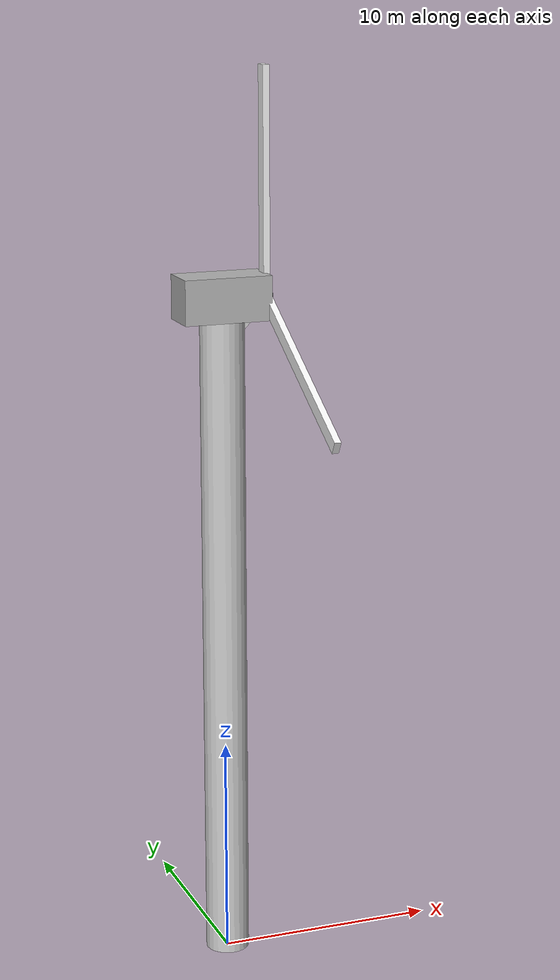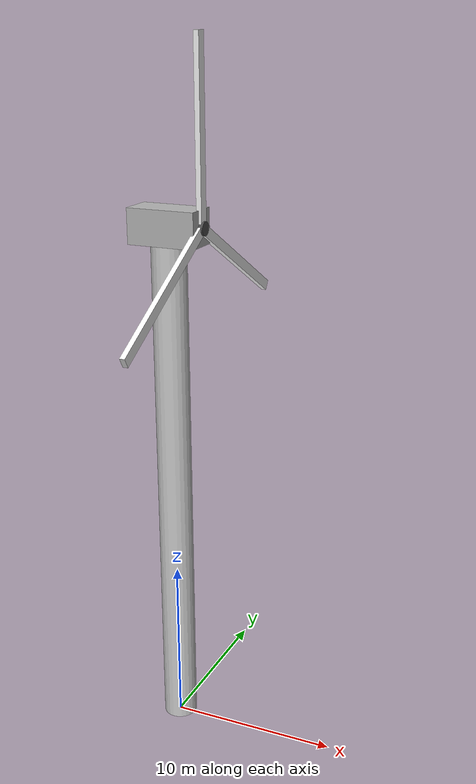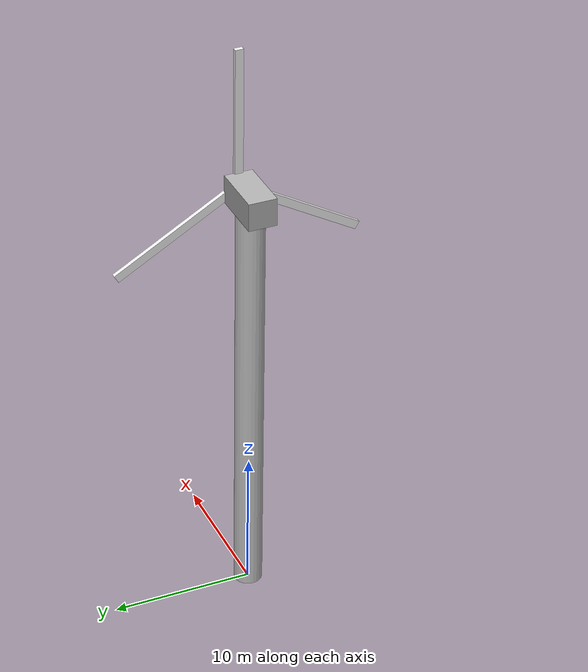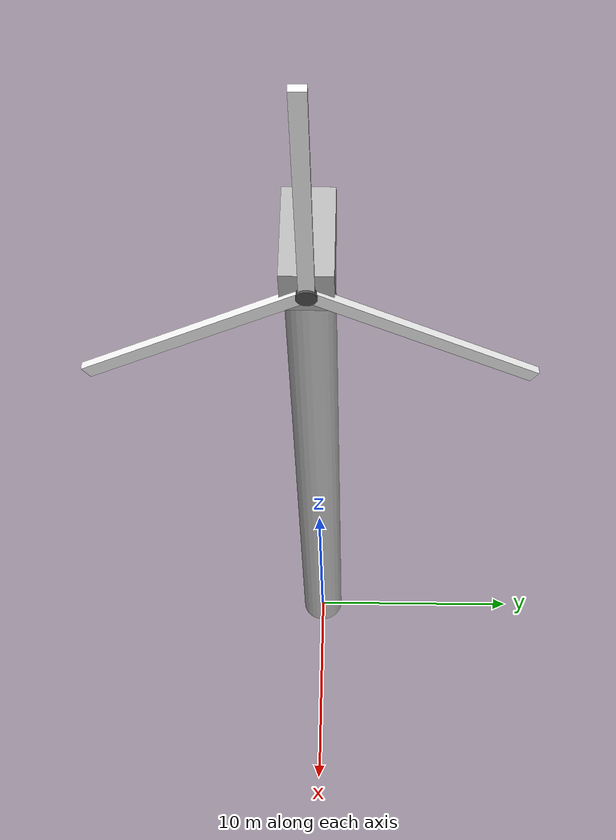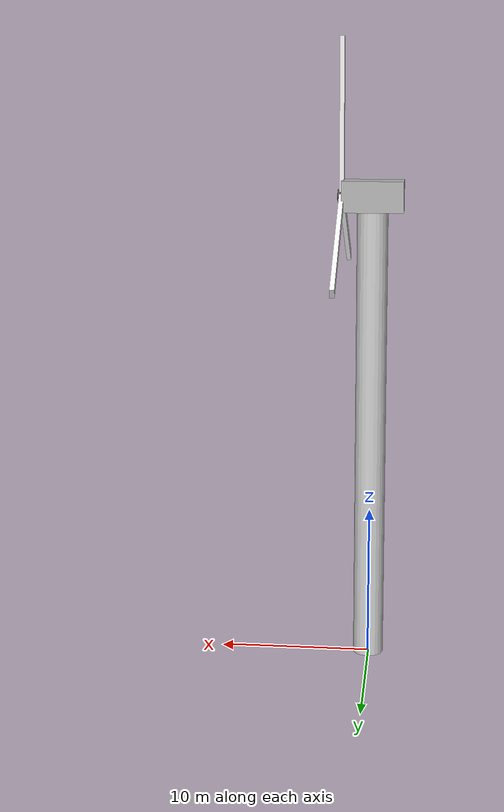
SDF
<?xml version="1.0"?>
<sdf version="1.9">
  <model name="wind_turbine30m">
    <pose>0 0 0 0 0 0</pose>
    <static>false</static>

    <!-- ===================== TORRE ===================== -->
    <link name="tower">
      <pose>0 0 15 0 0 0</pose> <!-- Centro a mitad de altura -->
      <inertial>
        <mass>1000</mass>
        <inertia>
          <ixx>833.33</ixx>
          <iyy>833.33</iyy>
          <izz>10</izz>
        </inertia>
      </inertial>
      <collision name="collision">
        <geometry>
          <cylinder>
            <radius>1</radius>
            <length>30</length>
          </cylinder>
        </geometry>
      </collision>
      <visual name="visual">
        <geometry>
          <cylinder>
            <radius>1</radius>
            <length>30</length>
          </cylinder>
        </geometry>
        <material>
          <ambient>0.8 0.8 0.8 1</ambient>
          <diffuse>0.8 0.8 0.8 1</diffuse>
        </material>
      </visual>
    </link>

    <!-- ===================== GÓNDOLA (Nacelle) ===================== -->
    <link name="nacelle">
      <pose>0 0 31 0 0 0</pose> <!-- Encima de la torre -->
      <inertial>
        <mass>100</mass>
        <inertia>
          <ixx>8.33</ixx>
          <iyy>8.33</iyy>
          <izz>8.33</izz>
        </inertia>
      </inertial>
      <collision name="collision">
        <geometry>
          <box>
            <size>4 2 2</size>
          </box>
        </geometry>
      </collision>
      <visual name="visual">
        <geometry>
          <box>
            <size>4 2 2</size>
          </box>
        </geometry>
        <material>
          <ambient>0.7 0.7 0.7 1</ambient>
          <diffuse>0.7 0.7 0.7 1</diffuse>
        </material>
      </visual>
    </link>

    <!-- ===================== ROTOR (Hub + 3 Aspas como un solo cuerpo) ===================== -->
    <link name="rotor">
      <pose>2 0 31 0 0 0</pose> <!-- Delante de góndola-->
      <inertial>
        <!-- Masa total: hub(50) + 3 aspas(20*3) = 110 kg -->
        <mass>110</mass>
        <inertia>
          <!-- Inercia aproximada del conjunto rotor -->
          <ixx>42</ixx>
          <iyy>800</iyy>  <!-- Mayor inercia en dirección perpendicular al eje -->
          <izz>800</izz>
          <ixy>0</ixy>
          <ixz>0</ixz>
          <iyz>0</iyz>
        </inertia>
      </inertial>

      <!-- Hub central -->
      <collision name="hub_collision">
        <pose>0 0 0 0 1.5708 0</pose>
        <geometry>
          <cylinder>
            <radius>0.4</radius>
            <length>0.5</length>
          </cylinder>
        </geometry>
      </collision>
      <visual name="hub_visual">
        <pose>0 0 0 0 1.5708 0</pose>
        <geometry>
          <cylinder>
            <radius>0.4</radius>
            <length>0.5</length>
          </cylinder>
        </geometry>
        <material>
          <ambient>0.3 0.3 0.3 1</ambient>
          <diffuse>0.3 0.3 0.3 1</diffuse>
        </material>
      </visual>

      <!-- Aspa 1 (0°) -->
      <collision name="blade_1_collision">
        <pose>0 0 5 0 0 0</pose>
        <geometry>
          <box>
            <size>0.3 0.6 10.0</size>
          </box>
        </geometry>
      </collision>
      <visual name="blade_1_visual">
        <pose>0 0 5 0 0 0</pose>
        <geometry>
          <box>
            <size>0.3 0.6 10.0</size>
          </box>
        </geometry>
        <material>
          <ambient>0.95 0.95 0.95 1</ambient>
          <diffuse>0.95 0.95 0.95 1</diffuse>
        </material>
      </visual>

      <!-- Aspa 2 (120°) -->
      <collision name="blade_2_collision">
        <pose>0 -4.33 -2.5 2.0944 0 0</pose>  <!-- 120° = 2.0944 rad -->
        <geometry>
          <box>
            <size>0.3 0.6 10.0</size>
          </box>
        </geometry>
      </collision>
      <visual name="blade_2_visual">
        <pose> 0 -4.33 -2.5 2.0944 0 0</pose>
        <geometry>
          <box>
            <size>0.3 0.6 10.0</size>
          </box>
        </geometry>
        <material>
          <ambient>0.95 0.95 0.95 1</ambient>
          <diffuse>0.95 0.95 0.95 1</diffuse>
        </material>
      </visual>

      <!-- Aspa 3 (240°) -->
      <collision name="blade_3_collision">
        <pose>0  4.33 -2.5  4.1888 0 0</pose>  <!-- 240° = 4.1888 rad -->
        <geometry>
          <box>
            <size>0.3 0.6 10.0</size>
          </box>
        </geometry>
      </collision>
      <visual name="blade_3_visual">
        <pose>0 4.33 -2.5  4.1888 0 0</pose>
        <geometry>
          <box>
            <size>0.3 0.6 10.0</size>
          </box>
        </geometry>
        <material>
          <ambient>0.95 0.95 0.95 1</ambient>
          <diffuse>0.95 0.95 0.95 1</diffuse>
        </material>
      </visual>
    </link>

    <!-- ===================== JOINTS ===================== -->

    <!-- Torre fija al mundo -->
    <joint name="tower_fixed" type="fixed">
      <parent>world</parent>
      <child>tower</child>
    </joint>

    <!-- Góndola rota sobre torre (orientación al viento - yaw) -->
    <joint name="nacelle_yaw_joint" type="revolute">
      <parent>tower</parent>
      <child>nacelle</child>
      <axis>
        <xyz>0 0 1</xyz>
        <limit>
          <lower>-1e16</lower>
          <upper>1e16</upper>
        </limit>
        <dynamics>
          <damping>0.5</damping>
          <friction>0.1</friction>
        </dynamics>
      </axis>
    </joint>

    <!-- Rotor gira sobre góndola (generación de energía) -->
    <joint name="rotor_joint" type="revolute">
      <parent>nacelle</parent>
      <child>rotor</child>
      <axis>
        <xyz>1 0 0</xyz>  <!-- Eje local del rotor (perpendicular a aspas) -->
        <limit>
          <lower>-1e16</lower>
          <upper>1e16</upper>
        </limit>
        <dynamics>
          <damping>0.1</damping>
        </dynamics>
      </axis>
    </joint>

    <!-- ===================== PLUGINS ===================== -->

    <!-- Control de velocidad del rotor -->
    <plugin
      filename="gz-sim-joint-controller-system"
      name="gz::sim::systems::JointController">
      <topic>/model/wind_turbine/rotor_speed_cmd</topic>
      <joint_name>rotor_joint</joint_name>
      <use_velocity_commands>true</use_velocity_commands>
      <initial_velocity>1.0</initial_velocity>  <!-- 1 rad/s inicial -->
    </plugin>

    <!-- Control de orientación de la góndola -->
    <plugin
      filename="gz-sim-joint-position-controller-system"
      name="gz::sim::systems::JointPositionController">
      <joint_name>nacelle_yaw_joint</joint_name>
      <topic>/model/wind_turbine/gondola_yaw_cmd</topic>
      <p_gain>10.0</p_gain>
      <i_gain>0.1</i_gain>
      <d_gain>0.5</d_gain>
      <i_max>1.0</i_max>
      <i_min>-1.0</i_min>
      <cmd_max>100</cmd_max>
      <cmd_min>-100</cmd_min>
    </plugin>

  </model>
</sdf>
